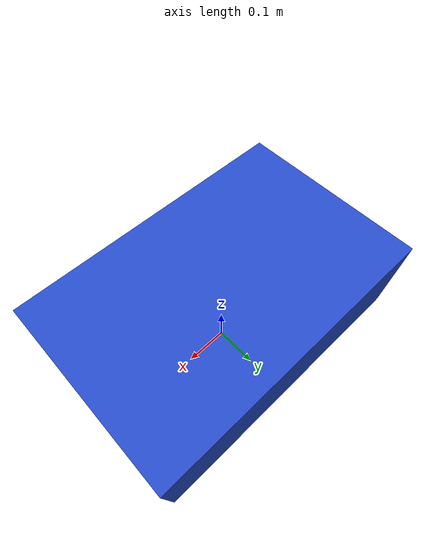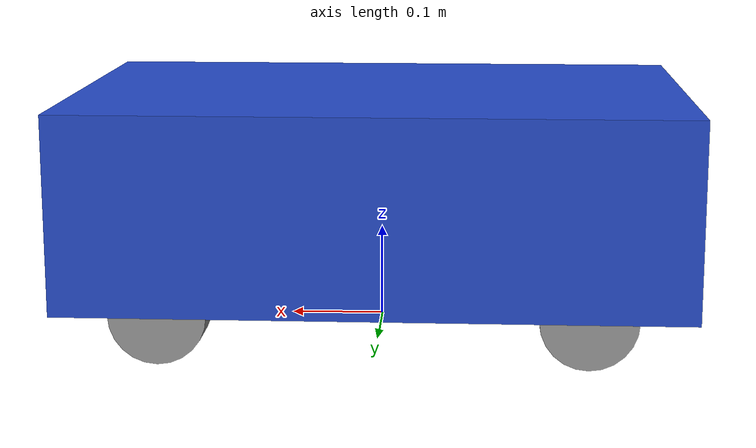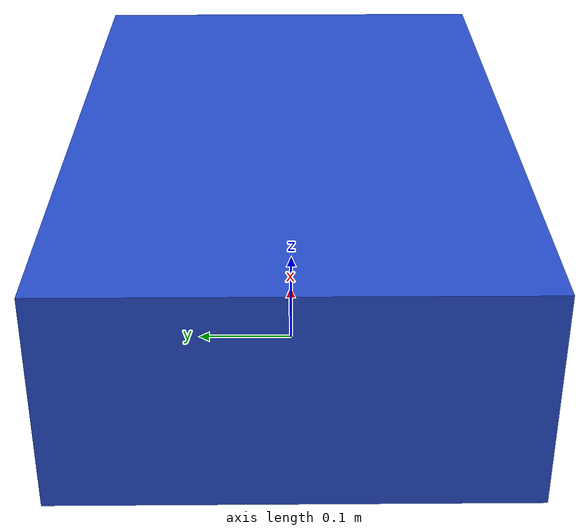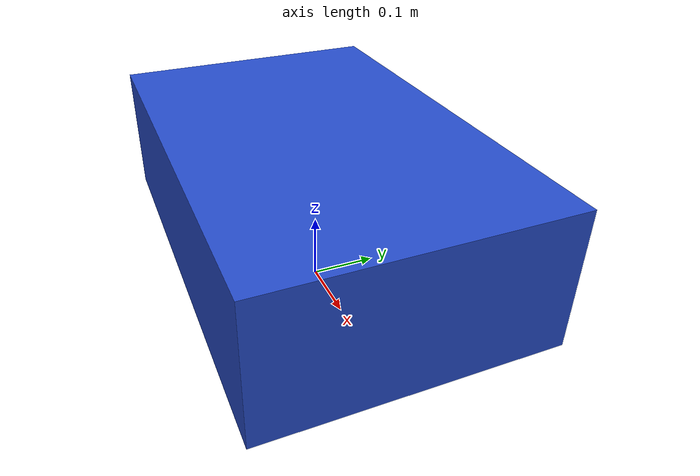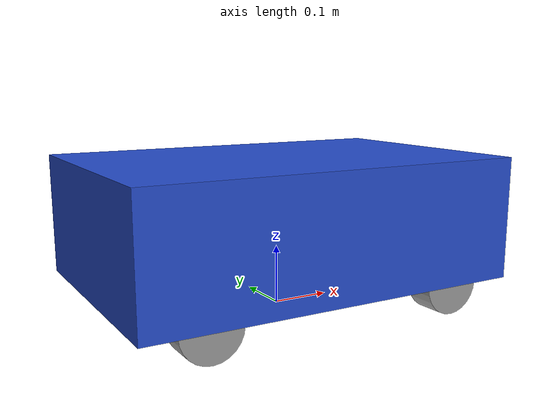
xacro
<?xml version="1.0"?>
<robot xmlns:xacro="http://www.ros.org/wiki/xacro">

    <!-- Body Variables -->
    <xacro:property name="base_length" value="0.65" />
    <xacro:property name="base_width" value="0.425" />
    <xacro:property name="base_height" value="0.205" />
    <xacro:property name="wheel_radius" value="0.05" />
    <xacro:property name="wheel_length" value="0.05" />
    <xacro:property name="caster_radius" value="${wheel_radius / 2.0}" />

    <!-- Link Definitions  -->
    <link name="base_footprint" />

    <link name="base_link">
        <visual>
            <geometry>
                <box size="${base_length} ${base_width} ${base_height}" />
            </geometry>
            <origin xyz="0 0 ${base_height / 2.0}" rpy="0 0 0" />
            <material name="blue" />
        </visual>
        <collision>
            <geometry>
                <box size="${base_length} ${base_width} ${base_height}" />
            </geometry>
            <origin xyz="0 0 ${base_height / 2.0}" rpy="0 0 0" />
        </collision>
        <xacro:box_inertia m="5.0" x="${base_length}" y="${base_width}" z="${base_height}"
                        o_xyz="0 0 ${base_height / 2.0}" o_rpy="0 0 0" />
    </link>

    <xacro:macro name="wheel_link" params="prefix">
        <link name="${prefix}_wheel_link">
            <visual>
                <geometry>
                    <cylinder radius="${wheel_radius}" length="${wheel_length}" />
                </geometry>
                <origin xyz="0 0 0" rpy="0 0 0" />
                <material name="grey" />
            </visual>
            <collision>
                <geometry>
                    <cylinder radius="${wheel_radius}" length="${wheel_length}"/>
                </geometry>
                <origin xyz="0 0 0" rpy="0 0 0" />
            </collision>
        <xacro:cylinder_inertia m="1.0" r="${wheel_radius}" h="${wheel_length}"
                        o_xyz="0 0 0" o_rpy="0 0 0" />
        </link>
    </xacro:macro>

    <xacro:wheel_link prefix="back_right" />
    <xacro:wheel_link prefix="back_left" />
    <xacro:wheel_link prefix="front_right" />
    <xacro:wheel_link prefix="front_left" />

    <!-- Joint Definitions -->
    <joint name="base_joint" type="fixed">
        <parent link="base_footprint" />
        <child link="base_link" />
        <origin xyz="0 0 ${wheel_radius}" rpy="0 0 0"/>
    </joint>

    <joint name="base_back_right_wheel_joint" type="continuous">
        <parent link="base_link" />
        <child link="back_right_wheel_link" />
        <origin xyz="${-base_length / 3.0} ${-(base_width - wheel_length - 0.02) / 2.0} 0" rpy="-${pi / 2.0} 0 0"/>
        <axis xyz="0 0 1" />
    </joint>

    <joint name="base_back_left_wheel_joint" type="continuous">
        <parent link="base_link" />
        <child link="back_left_wheel_link" />
        <origin xyz="${-base_length / 3.0} ${(base_width - wheel_length - 0.02) / 2.0} 0" rpy="-${pi / 2.0} 0 0"/>
        <axis xyz="0 0 1" />
    </joint>

    <joint name="base_front_right_wheel_joint" type="continuous">
        <parent link="base_link" />
        <child link="front_right_wheel_link" />
        <origin xyz="${base_length / 3.0} ${-(base_width - wheel_length - 0.02) / 2.0} 0" rpy="-${pi / 2.0} 0 0"/>
        <axis xyz="0 0 1" />
    </joint>

    <joint name="base_front_left_wheel_joint" type="continuous">
        <parent link="base_link" />
        <child link="front_left_wheel_link" />
        <origin xyz="${base_length / 3.0} ${(base_width - wheel_length - 0.02) / 2.0} 0" rpy="-${pi / 2.0} 0 0"/>
        <axis xyz="0 0 1" />
    </joint>

</robot>
